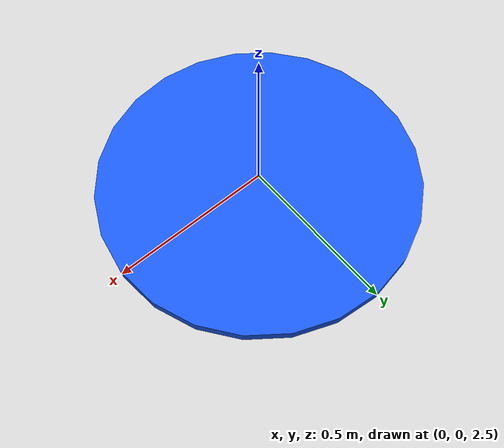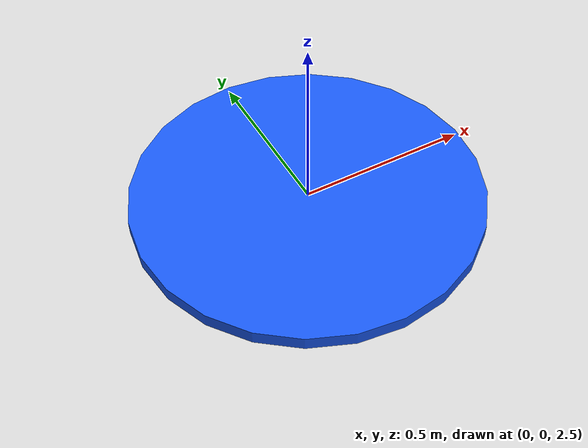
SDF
<?xml version="1.0" ?>
<sdf version="1.9">
  <model name="waypoint_marker_blue">
    <!-- Mavi disk: Suyun 2-3 metre üstünde görünürlük için -->
    <!-- FIX: Waypoint markers su üstünde olmalı (z=2.5) -->
    <static>true</static>
    <link name="link">
      <collision name="disk_collision">
        <pose>0 0 2.5 0 0 0</pose>
        <geometry>
          <cylinder>
            <radius>0.50</radius>
            <length>0.04</length>
          </cylinder>
        </geometry>
        <surface>
          <contact>
            <collide_bitmask>0</collide_bitmask>
          </contact>
        </surface>
      </collision>
      <visual name="disk_visual">
        <pose>0 0 2.5 0 0 0</pose>
        <geometry>
          <cylinder>
            <radius>0.50</radius>
            <length>0.04</length>
          </cylinder>
        </geometry>
        <material>
          <ambient>0.10 0.35 0.95 1</ambient>
          <diffuse>0.10 0.35 0.95 1</diffuse>
          <specular>0.15 0.15 0.20 1</specular>
        </material>
      </visual>
    </link>
  </model>
</sdf>
